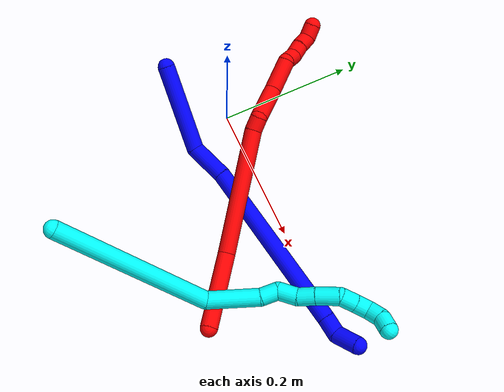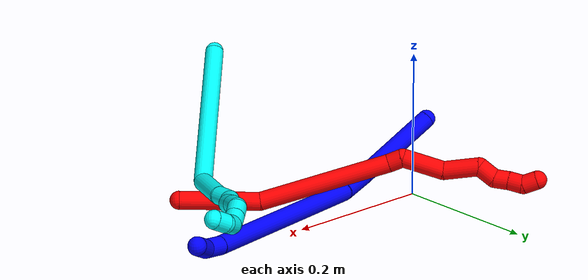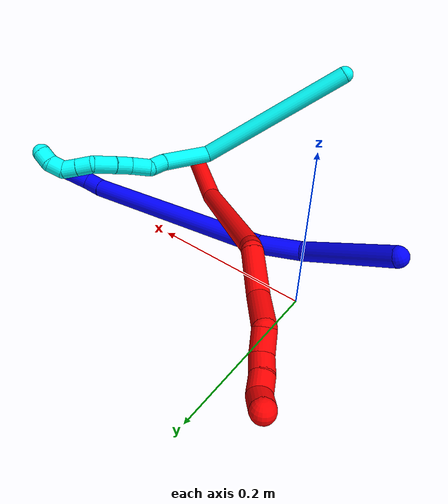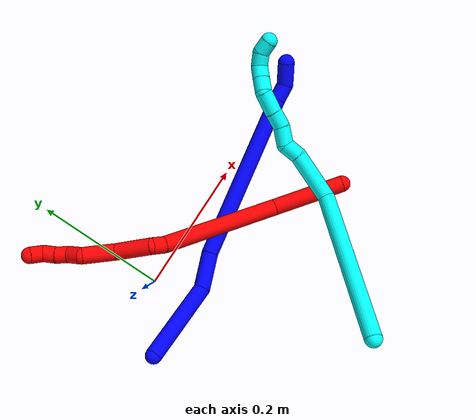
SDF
<sdf version="1.7">
 <world name="default">
  <plugin name="TubeGeneratorPlugin" filename="libtube_generator_plugin.so"/>
  <model name="photoneo_s_sensor">
   <static>1</static>
   <pose>0 0 2 1.57079 1.57079 3.14159</pose>
   <link name="link">
    <inertial><mass>0.1</mass></inertial>
    <sensor name="sensor" type="depth">
     <update_rate>30</update_rate>
     <camera>
      <horizontal_fov>1.22</horizontal_fov>
      <image><width>1920</width><height>1200</height><format>B8G8R8</format></image>
      <clip><near>0.1</near><far>4</far></clip>
      <depth_camera><output>points</output></depth_camera>
     </camera>
     <plugin name="camera_plugin" filename="libgazebo_ros_depth_camera.so">
      <baseline>0.2</baseline>
      <alwaysOn>1</alwaysOn>
      <updateRate>0.0</updateRate>
      <cameraName>camera_ir</cameraName>
      <imageTopicName>/camera/color/image_raw</imageTopicName>
      <cameraInfoTopicName>/camera/color/camera_info</cameraInfoTopicName>
      <depthImageTopicName>/camera/depth/image_raw</depthImageTopicName>
      <depthImageCameraInfoTopicName>/camera/depth/camera_info</depthImageCameraInfoTopicName>
      <pointCloudTopicName>/camera/depth/points</pointCloudTopicName>
      <frameName>fr_optical</frameName>
      <pointCloudCutoff>0.1</pointCloudCutoff>
      <pointCloudCutoffMax>2.0</pointCloudCutoffMax>
      <distortionK1>0</distortionK1>
      <distortionK2>0</distortionK2>
      <distortionK3>0</distortionK3>
      <distortionT1>0</distortionT1>
      <distortionT2>0</distortionT2>
      <CxPrime>0</CxPrime>
      <Cx>0</Cx>
      <Cy>0</Cy>
      <focalLength>0</focalLength>
      <hackBaseline>0</hackBaseline>
     </plugin>
    </sensor>
   </link>
  </model>
  <gravity>0 0 -9.8</gravity>
  <magnetic_field>6e-06 2.3e-05 -4.2e-05</magnetic_field>
  <atmosphere type="adiabatic"/>
  <physics name="default_physics" default="0" type="ode">
   <max_step_size>0.003</max_step_size>
   <real_time_factor>1</real_time_factor>
   <real_time_update_rate>1000</real_time_update_rate>
   <max_contacts>10000</max_contacts>
   <ode>
    <solver>
     <type>quick</type>
     <iters>100</iters>
     <sor>1.3</sor>
     <use_dynamic_moi_rescaling>0</use_dynamic_moi_rescaling>
    </solver>
    <constraints>
     <contact_max_correcting_vel>0</contact_max_correcting_vel>
     <contact_surface_layer>0.001</contact_surface_layer>
     <cfm>0</cfm>
     <erp>0.2</erp>
    </constraints>
   </ode>
  </physics>
  <scene><ambient>0.4 0.4 0.4 1</ambient><background>0.7 0.7 0.7 1</background><shadows>0</shadows></scene>
  <audio><device>default</device></audio>
  <spherical_coordinates>
   <surface_model>EARTH_WGS84</surface_model>
   <latitude_deg>0</latitude_deg>
   <longitude_deg>0</longitude_deg>
   <elevation>0</elevation>
   <heading_deg>0</heading_deg>
  </spherical_coordinates>
  <model name="bin">
   <static>1</static>
   <link name="bottom">
    <collision name="collision-bottom">
     <pose>0 0 -0.01 0 -0 0</pose>
     <geometry><box><size>0.8 0.6 0.02</size></box></geometry>
     <surface>
      <friction><ode><mu>100</mu><mu2>100</mu2></ode></friction>
      <contact><collide_bitmask>65535</collide_bitmask></contact>
     </surface>
    </collision>
   </link>
   <link name="west_wall">
    <collision name="collision-west_wall">
     <pose>-0.41 0 0.1 0 -0 0</pose>
     <geometry><box><size>0.02 0.6 0.2</size></box></geometry>
     <surface>
      <friction><ode><mu>100</mu><mu2>100</mu2></ode></friction>
      <contact><collide_bitmask>65535</collide_bitmask></contact>
     </surface>
    </collision>
   </link>
   <link name="east_wall">
    <collision name="collision-east_wall">
     <pose>0.41 0 0.1 0 -0 0</pose>
     <geometry><box><size>0.02 0.6 0.2</size></box></geometry>
     <surface>
      <friction><ode><mu>100</mu><mu2>100</mu2></ode></friction>
      <contact><collide_bitmask>65535</collide_bitmask></contact>
     </surface>
    </collision>
   </link>
   <link name="south_wall">
    <collision name="collision-south_wall">
     <pose>0 -0.31 0.1 0 -0 0</pose>
     <geometry><box><size>0.8 0.02 0.2</size></box></geometry>
     <surface>
      <friction><ode><mu>100</mu><mu2>100</mu2></ode></friction>
      <contact><collide_bitmask>65535</collide_bitmask></contact>
     </surface>
    </collision>
   </link>
   <link name="north_wall">
    <collision name="collision-north_wall">
     <pose>0 0.31 0.1 0 -0 0</pose>
     <geometry><box><size>0.8 0.02 0.2</size></box></geometry>
     <surface>
      <friction><ode><mu>100</mu><mu2>100</mu2></ode></friction>
      <contact><collide_bitmask>65535</collide_bitmask></contact>
     </surface>
    </collision>
   </link>
  </model>
  <model name="1">
   <static>0</static>
   <link name="1">
    <collision name="collision-cylinder-e_1_1_4">
     <pose>0.063068 0.002849 -0.009328 -2.84515 1.41736 -2.79669</pose>
     <geometry><cylinder><radius>0.0125</radius><length>0.127636</length></cylinder></geometry>
     <surface>
      <friction><ode><mu>1.16</mu><mu2>1.16</mu2><slip1>0</slip1><slip2>0</slip2></ode></friction>
      <contact><ode><kp>1e+06</kp><kd>1</kd><max_vel>0</max_vel><min_depth>0.001</min_depth></ode></contact>
     </surface>
    </collision>
    <visual name="visual-cylinder-e_1_1_4">
     <pose>0.063068 0.002849 -0.009328 -2.84515 1.41736 -2.79669</pose>
     <geometry><cylinder><radius>0.0125</radius><length>0.127636</length></cylinder></geometry>
     <material><ambient>0 0 1 1</ambient></material>
    </visual>
    <collision name="collision-cylinder-e_2_4_5">
     <pose>0.150739 0.016065 -0.010483 -0.903124 1.07832 -0.564811</pose>
     <geometry><cylinder><radius>0.0125</radius><length>0.055841</length></cylinder></geometry>
     <surface>
      <friction><ode><mu>1.16</mu><mu2>1.16</mu2><slip1>0</slip1><slip2>0</slip2></ode></friction>
      <contact><ode><kp>1e+06</kp><kd>1</kd><max_vel>0</max_vel><min_depth>0.001</min_depth></ode></contact>
     </surface>
    </collision>
    <visual name="visual-cylinder-e_2_4_5">
     <pose>0.150739 0.016065 -0.010483 -0.903124 1.07832 -0.564811</pose>
     <geometry><cylinder><radius>0.0125</radius><length>0.055841</length></cylinder></geometry>
     <material><ambient>0 0 1 1</ambient></material>
    </visual>
    <collision name="collision-cylinder-e_3_5_6">
     <pose>0.292622 0.049239 0.043036 -0.466039 1.16234 -0.309289</pose>
     <geometry><cylinder><radius>0.0125</radius><length>0.255586</length></cylinder></geometry>
     <surface>
      <friction><ode><mu>1.16</mu><mu2>1.16</mu2><slip1>0</slip1><slip2>0</slip2></ode></friction>
      <contact><ode><kp>1e+06</kp><kd>1</kd><max_vel>0</max_vel><min_depth>0.001</min_depth></ode></contact>
     </surface>
    </collision>
    <visual name="visual-cylinder-e_3_5_6">
     <pose>0.292622 0.049239 0.043036 -0.466039 1.16234 -0.309289</pose>
     <geometry><cylinder><radius>0.0125</radius><length>0.255586</length></cylinder></geometry>
     <material><ambient>0 0 1 1</ambient></material>
    </visual>
    <collision name="collision-cylinder-e_4_6_7">
     <pose>0.421591 0.073165 0.094202 -0.189625 1.10145 -0.116667</pose>
     <geometry><cylinder><radius>0.0125</radius><length>0.026211</length></cylinder></geometry>
     <surface>
      <friction><ode><mu>1.16</mu><mu2>1.16</mu2><slip1>0</slip1><slip2>0</slip2></ode></friction>
      <contact><ode><kp>1e+06</kp><kd>1</kd><max_vel>0</max_vel><min_depth>0.001</min_depth></ode></contact>
     </surface>
    </collision>
    <visual name="visual-cylinder-e_4_6_7">
     <pose>0.421591 0.073165 0.094202 -0.189625 1.10145 -0.116667</pose>
     <geometry><cylinder><radius>0.0125</radius><length>0.026211</length></cylinder></geometry>
     <material><ambient>0 0 1 1</ambient></material>
    </visual>
    <collision name="collision-cylinder-e_5_7_2">
     <pose>0.442635 0.081223 0.112899 -0.494432 0.569028 -0.147348</pose>
     <geometry><cylinder><radius>0.0125</radius><length>0.034726</length></cylinder></geometry>
     <surface>
      <friction><ode><mu>1.16</mu><mu2>1.16</mu2><slip1>0</slip1><slip2>0</slip2></ode></friction>
      <contact><ode><kp>1e+06</kp><kd>1</kd><max_vel>0</max_vel><min_depth>0.001</min_depth></ode></contact>
     </surface>
    </collision>
    <visual name="visual-cylinder-e_5_7_2">
     <pose>0.442635 0.081223 0.112899 -0.494432 0.569028 -0.147348</pose>
     <geometry><cylinder><radius>0.0125</radius><length>0.034726</length></cylinder></geometry>
     <material><ambient>0 0 1 1</ambient></material>
    </visual>
    <collision name="collision-sphere-2">
     <pose>0.45199 0.088164 0.125774 0 -0 0</pose>
     <geometry><sphere><radius>0.0125</radius></sphere></geometry>
     <surface>
      <friction><ode><mu>1.16</mu><mu2>1.16</mu2><slip1>0</slip1><slip2>0</slip2></ode></friction>
      <contact><ode><kp>1e+06</kp><kd>1</kd><max_vel>0</max_vel><min_depth>0.001</min_depth></ode></contact>
     </surface>
    </collision>
    <visual name="visual-sphere-2">
     <pose>0.45199 0.088164 0.125774 0 -0 0</pose>
     <geometry><sphere><radius>0.0125</radius></sphere></geometry>
     <material><ambient>0 0 1 1</ambient></material>
    </visual>
    <collision name="collision-sphere-7">
     <pose>0.433279 0.074282 0.100024 0 -0 0</pose>
     <geometry><sphere><radius>0.0125</radius></sphere></geometry>
     <surface>
      <friction><ode><mu>1.16</mu><mu2>1.16</mu2><slip1>0</slip1><slip2>0</slip2></ode></friction>
      <contact><ode><kp>1e+06</kp><kd>1</kd><max_vel>0</max_vel><min_depth>0.001</min_depth></ode></contact>
     </surface>
    </collision>
    <visual name="visual-sphere-7">
     <pose>0.433279 0.074282 0.100024 0 -0 0</pose>
     <geometry><sphere><radius>0.0125</radius></sphere></geometry>
     <material><ambient>0 0 1 1</ambient></material>
    </visual>
    <collision name="collision-sphere-6">
     <pose>0.409902 0.072047 0.088381 0 -0 0</pose>
     <geometry><sphere><radius>0.0125</radius></sphere></geometry>
     <surface>
      <friction><ode><mu>1.16</mu><mu2>1.16</mu2><slip1>0</slip1><slip2>0</slip2></ode></friction>
      <contact><ode><kp>1e+06</kp><kd>1</kd><max_vel>0</max_vel><min_depth>0.001</min_depth></ode></contact>
     </surface>
    </collision>
    <visual name="visual-sphere-6">
     <pose>0.409902 0.072047 0.088381 0 -0 0</pose>
     <geometry><sphere><radius>0.0125</radius></sphere></geometry>
     <material><ambient>0 0 1 1</ambient></material>
    </visual>
    <collision name="collision-sphere-5">
     <pose>0.175341 0.026431 -0.002309 0 -0 0</pose>
     <geometry><sphere><radius>0.0125</radius></sphere></geometry>
     <surface>
      <friction><ode><mu>1.16</mu><mu2>1.16</mu2><slip1>0</slip1><slip2>0</slip2></ode></friction>
      <contact><ode><kp>1e+06</kp><kd>1</kd><max_vel>0</max_vel><min_depth>0.001</min_depth></ode></contact>
     </surface>
    </collision>
    <visual name="visual-sphere-5">
     <pose>0.175341 0.026431 -0.002309 0 -0 0</pose>
     <geometry><sphere><radius>0.0125</radius></sphere></geometry>
     <material><ambient>0 0 1 1</ambient></material>
    </visual>
    <collision name="collision-sphere-1">
     <geometry><sphere><radius>0.0125</radius></sphere></geometry>
     <surface>
      <friction><ode><mu>1.16</mu><mu2>1.16</mu2><slip1>0</slip1><slip2>0</slip2></ode></friction>
      <contact><ode><kp>1e+06</kp><kd>1</kd><max_vel>0</max_vel><min_depth>0.001</min_depth></ode></contact>
     </surface>
    </collision>
    <visual name="visual-sphere-1">
     <geometry><sphere><radius>0.0125</radius></sphere></geometry>
     <material><ambient>0 0 1 1</ambient></material>
    </visual>
    <collision name="collision-sphere-4">
     <pose>0.126136 0.005698 -0.018656 0 -0 0</pose>
     <geometry><sphere><radius>0.0125</radius></sphere></geometry>
     <surface>
      <friction><ode><mu>1.16</mu><mu2>1.16</mu2><slip1>0</slip1><slip2>0</slip2></ode></friction>
      <contact><ode><kp>1e+06</kp><kd>1</kd><max_vel>0</max_vel><min_depth>0.001</min_depth></ode></contact>
     </surface>
    </collision>
    <visual name="visual-sphere-4">
     <pose>0.126136 0.005698 -0.018656 0 -0 0</pose>
     <geometry><sphere><radius>0.0125</radius></sphere></geometry>
     <material><ambient>0 0 1 1</ambient></material>
    </visual>
    <inertial>
     <pose>0.235357 0.037168 0.031226 0 -0 0</pose>
     <mass>0.5</mass>
     <inertia>
      <ixx>0.000368</ixx>
      <ixy>0</ixy>
      <ixz>0</ixz>
      <iyy>0.001391</iyy>
      <iyz>0</iyz>
      <izz>-0.001738</izz>
     </inertia>
    </inertial>
   </link>
   <pose>-0.081883 -0.059872 0.074145 -0.183052 0.324813 -0.073746</pose>
  </model>
  <model name="2">
   <static>0</static>
   <link name="2">
    <collision name="collision-cylinder-e_1_1_4">
     <pose>-0.034932 0.040209 -0.011008 -1.83803 -0.697437 0.889338</pose>
     <geometry><cylinder><radius>0.0125</radius><length>0.108778</length></cylinder></geometry>
     <surface>
      <friction><ode><mu>1.16</mu><mu2>1.16</mu2><slip1>0</slip1><slip2>0</slip2></ode></friction>
      <contact><ode><kp>1e+06</kp><kd>1</kd><max_vel>0</max_vel><min_depth>0.001</min_depth></ode></contact>
     </surface>
    </collision>
    <visual name="visual-cylinder-e_1_1_4">
     <pose>-0.034932 0.040209 -0.011008 -1.83803 -0.697437 0.889338</pose>
     <geometry><cylinder><radius>0.0125</radius><length>0.108778</length></cylinder></geometry>
     <material><ambient>1 0 0 1</ambient></material>
    </visual>
    <collision name="collision-cylinder-e_2_4_5">
     <pose>-0.127479 0.148754 -0.011271 -1.41481 -0.694468 0.600177</pose>
     <geometry><cylinder><radius>0.0125</radius><length>0.180054</length></cylinder></geometry>
     <surface>
      <friction><ode><mu>1.16</mu><mu2>1.16</mu2><slip1>0</slip1><slip2>0</slip2></ode></friction>
      <contact><ode><kp>1e+06</kp><kd>1</kd><max_vel>0</max_vel><min_depth>0.001</min_depth></ode></contact>
     </surface>
    </collision>
    <visual name="visual-cylinder-e_2_4_5">
     <pose>-0.127479 0.148754 -0.011271 -1.41481 -0.694468 0.600177</pose>
     <geometry><cylinder><radius>0.0125</radius><length>0.180054</length></cylinder></geometry>
     <material><ambient>1 0 0 1</ambient></material>
    </visual>
    <collision name="collision-cylinder-e_3_5_6">
     <pose>-0.189625 0.225779 0.002099 -1.27757 -0.463071 0.34667</pose>
     <geometry><cylinder><radius>0.0125</radius><length>0.020289</length></cylinder></geometry>
     <surface>
      <friction><ode><mu>1.16</mu><mu2>1.16</mu2><slip1>0</slip1><slip2>0</slip2></ode></friction>
      <contact><ode><kp>1e+06</kp><kd>1</kd><max_vel>0</max_vel><min_depth>0.001</min_depth></ode></contact>
     </surface>
    </collision>
    <visual name="visual-cylinder-e_3_5_6">
     <pose>-0.189625 0.225779 0.002099 -1.27757 -0.463071 0.34667</pose>
     <geometry><cylinder><radius>0.0125</radius><length>0.020289</length></cylinder></geometry>
     <material><ambient>1 0 0 1</ambient></material>
    </visual>
    <collision name="collision-cylinder-e_4_6_7">
     <pose>-0.207286 0.256367 -0.007714 -2.08728 -0.480561 0.796804</pose>
     <geometry><cylinder><radius>0.0125</radius><length>0.056801</length></cylinder></geometry>
     <surface>
      <friction><ode><mu>1.16</mu><mu2>1.16</mu2><slip1>0</slip1><slip2>0</slip2></ode></friction>
      <contact><ode><kp>1e+06</kp><kd>1</kd><max_vel>0</max_vel><min_depth>0.001</min_depth></ode></contact>
     </surface>
    </collision>
    <visual name="visual-cylinder-e_4_6_7">
     <pose>-0.207286 0.256367 -0.007714 -2.08728 -0.480561 0.796804</pose>
     <geometry><cylinder><radius>0.0125</radius><length>0.056801</length></cylinder></geometry>
     <material><ambient>1 0 0 1</ambient></material>
    </visual>
    <collision name="collision-cylinder-e_5_7_8">
     <pose>-0.231904 0.299765 -0.020185 -1.57244 -0.490808 0.491582</pose>
     <geometry><cylinder><radius>0.0125</radius><length>0.048755</length></cylinder></geometry>
     <surface>
      <friction><ode><mu>1.16</mu><mu2>1.16</mu2><slip1>0</slip1><slip2>0</slip2></ode></friction>
      <contact><ode><kp>1e+06</kp><kd>1</kd><max_vel>0</max_vel><min_depth>0.001</min_depth></ode></contact>
     </surface>
    </collision>
    <visual name="visual-cylinder-e_5_7_8">
     <pose>-0.231904 0.299765 -0.020185 -1.57244 -0.490808 0.491582</pose>
     <geometry><cylinder><radius>0.0125</radius><length>0.048755</length></cylinder></geometry>
     <material><ambient>1 0 0 1</ambient></material>
    </visual>
    <collision name="collision-cylinder-e_6_8_9">
     <pose>-0.245976 0.330001 -0.028961 -2.35643 -0.205964 0.489176</pose>
     <geometry><cylinder><radius>0.0125</radius><length>0.02525</length></cylinder></geometry>
     <surface>
      <friction><ode><mu>1.16</mu><mu2>1.16</mu2><slip1>0</slip1><slip2>0</slip2></ode></friction>
      <contact><ode><kp>1e+06</kp><kd>1</kd><max_vel>0</max_vel><min_depth>0.001</min_depth></ode></contact>
     </surface>
    </collision>
    <visual name="visual-cylinder-e_6_8_9">
     <pose>-0.245976 0.330001 -0.028961 -2.35643 -0.205964 0.489176</pose>
     <geometry><cylinder><radius>0.0125</radius><length>0.02525</length></cylinder></geometry>
     <material><ambient>1 0 0 1</ambient></material>
    </visual>
    <collision name="collision-cylinder-e_7_9_10">
     <pose>-0.252432 0.347654 -0.040124 -1.83605 -0.396999 0.514506</pose>
     <geometry><cylinder><radius>0.0125</radius><length>0.020037</length></cylinder></geometry>
     <surface>
      <friction><ode><mu>1.16</mu><mu2>1.16</mu2><slip1>0</slip1><slip2>0</slip2></ode></friction>
      <contact><ode><kp>1e+06</kp><kd>1</kd><max_vel>0</max_vel><min_depth>0.001</min_depth></ode></contact>
     </surface>
    </collision>
    <visual name="visual-cylinder-e_7_9_10">
     <pose>-0.252432 0.347654 -0.040124 -1.83605 -0.396999 0.514506</pose>
     <geometry><cylinder><radius>0.0125</radius><length>0.020037</length></cylinder></geometry>
     <material><ambient>1 0 0 1</ambient></material>
    </visual>
    <collision name="collision-cylinder-e_8_10_11">
     <pose>-0.258729 0.365787 -0.045621 -1.89279 -0.244445 0.337688</pose>
     <geometry><cylinder><radius>0.0125</radius><length>0.020028</length></cylinder></geometry>
     <surface>
      <friction><ode><mu>1.16</mu><mu2>1.16</mu2><slip1>0</slip1><slip2>0</slip2></ode></friction>
      <contact><ode><kp>1e+06</kp><kd>1</kd><max_vel>0</max_vel><min_depth>0.001</min_depth></ode></contact>
     </surface>
    </collision>
    <visual name="visual-cylinder-e_8_10_11">
     <pose>-0.258729 0.365787 -0.045621 -1.89279 -0.244445 0.337688</pose>
     <geometry><cylinder><radius>0.0125</radius><length>0.020028</length></cylinder></geometry>
     <material><ambient>1 0 0 1</ambient></material>
    </visual>
    <collision name="collision-cylinder-e_9_11_2">
     <pose>-0.265969 0.383523 -0.046617 -1.33146 -0.502248 0.397613</pose>
     <geometry><cylinder><radius>0.0125</radius><length>0.020008</length></cylinder></geometry>
     <surface>
      <friction><ode><mu>1.16</mu><mu2>1.16</mu2><slip1>0</slip1><slip2>0</slip2></ode></friction>
      <contact><ode><kp>1e+06</kp><kd>1</kd><max_vel>0</max_vel><min_depth>0.001</min_depth></ode></contact>
     </surface>
    </collision>
    <visual name="visual-cylinder-e_9_11_2">
     <pose>-0.265969 0.383523 -0.046617 -1.33146 -0.502248 0.397613</pose>
     <geometry><cylinder><radius>0.0125</radius><length>0.020008</length></cylinder></geometry>
     <material><ambient>1 0 0 1</ambient></material>
    </visual>
    <collision name="collision-sphere-2">
     <pose>-0.270785 0.392042 -0.044538 0 -0 0</pose>
     <geometry><sphere><radius>0.0125</radius></sphere></geometry>
     <surface>
      <friction><ode><mu>1.16</mu><mu2>1.16</mu2><slip1>0</slip1><slip2>0</slip2></ode></friction>
      <contact><ode><kp>1e+06</kp><kd>1</kd><max_vel>0</max_vel><min_depth>0.001</min_depth></ode></contact>
     </surface>
    </collision>
    <visual name="visual-sphere-2">
     <pose>-0.270785 0.392042 -0.044538 0 -0 0</pose>
     <geometry><sphere><radius>0.0125</radius></sphere></geometry>
     <material><ambient>1 0 0 1</ambient></material>
    </visual>
    <collision name="collision-sphere-11">
     <pose>-0.261153 0.375004 -0.048696 0 -0 0</pose>
     <geometry><sphere><radius>0.0125</radius></sphere></geometry>
     <surface>
      <friction><ode><mu>1.16</mu><mu2>1.16</mu2><slip1>0</slip1><slip2>0</slip2></ode></friction>
      <contact><ode><kp>1e+06</kp><kd>1</kd><max_vel>0</max_vel><min_depth>0.001</min_depth></ode></contact>
     </surface>
    </collision>
    <visual name="visual-sphere-11">
     <pose>-0.261153 0.375004 -0.048696 0 -0 0</pose>
     <geometry><sphere><radius>0.0125</radius></sphere></geometry>
     <material><ambient>1 0 0 1</ambient></material>
    </visual>
    <collision name="collision-sphere-10">
     <pose>-0.256306 0.356571 -0.042546 0 -0 0</pose>
     <geometry><sphere><radius>0.0125</radius></sphere></geometry>
     <surface>
      <friction><ode><mu>1.16</mu><mu2>1.16</mu2><slip1>0</slip1><slip2>0</slip2></ode></friction>
      <contact><ode><kp>1e+06</kp><kd>1</kd><max_vel>0</max_vel><min_depth>0.001</min_depth></ode></contact>
     </surface>
    </collision>
    <visual name="visual-sphere-10">
     <pose>-0.256306 0.356571 -0.042546 0 -0 0</pose>
     <geometry><sphere><radius>0.0125</radius></sphere></geometry>
     <material><ambient>1 0 0 1</ambient></material>
    </visual>
    <collision name="collision-sphere-9">
     <pose>-0.248558 0.338738 -0.037702 0 -0 0</pose>
     <geometry><sphere><radius>0.0125</radius></sphere></geometry>
     <surface>
      <friction><ode><mu>1.16</mu><mu2>1.16</mu2><slip1>0</slip1><slip2>0</slip2></ode></friction>
      <contact><ode><kp>1e+06</kp><kd>1</kd><max_vel>0</max_vel><min_depth>0.001</min_depth></ode></contact>
     </surface>
    </collision>
    <visual name="visual-sphere-9">
     <pose>-0.248558 0.338738 -0.037702 0 -0 0</pose>
     <geometry><sphere><radius>0.0125</radius></sphere></geometry>
     <material><ambient>1 0 0 1</ambient></material>
    </visual>
    <collision name="collision-sphere-4">
     <pose>-0.069864 0.080418 -0.022017 0 -0 0</pose>
     <geometry><sphere><radius>0.0125</radius></sphere></geometry>
     <surface>
      <friction><ode><mu>1.16</mu><mu2>1.16</mu2><slip1>0</slip1><slip2>0</slip2></ode></friction>
      <contact><ode><kp>1e+06</kp><kd>1</kd><max_vel>0</max_vel><min_depth>0.001</min_depth></ode></contact>
     </surface>
    </collision>
    <visual name="visual-sphere-4">
     <pose>-0.069864 0.080418 -0.022017 0 -0 0</pose>
     <geometry><sphere><radius>0.0125</radius></sphere></geometry>
     <material><ambient>1 0 0 1</ambient></material>
    </visual>
    <collision name="collision-sphere-1">
     <geometry><sphere><radius>0.0125</radius></sphere></geometry>
     <surface>
      <friction><ode><mu>1.16</mu><mu2>1.16</mu2><slip1>0</slip1><slip2>0</slip2></ode></friction>
      <contact><ode><kp>1e+06</kp><kd>1</kd><max_vel>0</max_vel><min_depth>0.001</min_depth></ode></contact>
     </surface>
    </collision>
    <visual name="visual-sphere-1">
     <geometry><sphere><radius>0.0125</radius></sphere></geometry>
     <material><ambient>1 0 0 1</ambient></material>
    </visual>
    <collision name="collision-sphere-8">
     <pose>-0.243394 0.321265 -0.02022 0 -0 0</pose>
     <geometry><sphere><radius>0.0125</radius></sphere></geometry>
     <surface>
      <friction><ode><mu>1.16</mu><mu2>1.16</mu2><slip1>0</slip1><slip2>0</slip2></ode></friction>
      <contact><ode><kp>1e+06</kp><kd>1</kd><max_vel>0</max_vel><min_depth>0.001</min_depth></ode></contact>
     </surface>
    </collision>
    <visual name="visual-sphere-8">
     <pose>-0.243394 0.321265 -0.02022 0 -0 0</pose>
     <geometry><sphere><radius>0.0125</radius></sphere></geometry>
     <material><ambient>1 0 0 1</ambient></material>
    </visual>
    <collision name="collision-sphere-5">
     <pose>-0.185094 0.217091 -0.000524 0 -0 0</pose>
     <geometry><sphere><radius>0.0125</radius></sphere></geometry>
     <surface>
      <friction><ode><mu>1.16</mu><mu2>1.16</mu2><slip1>0</slip1><slip2>0</slip2></ode></friction>
      <contact><ode><kp>1e+06</kp><kd>1</kd><max_vel>0</max_vel><min_depth>0.001</min_depth></ode></contact>
     </surface>
    </collision>
    <visual name="visual-sphere-5">
     <pose>-0.185094 0.217091 -0.000524 0 -0 0</pose>
     <geometry><sphere><radius>0.0125</radius></sphere></geometry>
     <material><ambient>1 0 0 1</ambient></material>
    </visual>
    <collision name="collision-sphere-6">
     <pose>-0.194157 0.234468 0.004723 0 -0 0</pose>
     <geometry><sphere><radius>0.0125</radius></sphere></geometry>
     <surface>
      <friction><ode><mu>1.16</mu><mu2>1.16</mu2><slip1>0</slip1><slip2>0</slip2></ode></friction>
      <contact><ode><kp>1e+06</kp><kd>1</kd><max_vel>0</max_vel><min_depth>0.001</min_depth></ode></contact>
     </surface>
    </collision>
    <visual name="visual-sphere-6">
     <pose>-0.194157 0.234468 0.004723 0 -0 0</pose>
     <geometry><sphere><radius>0.0125</radius></sphere></geometry>
     <material><ambient>1 0 0 1</ambient></material>
    </visual>
    <collision name="collision-sphere-7">
     <pose>-0.220415 0.278266 -0.02015 0 -0 0</pose>
     <geometry><sphere><radius>0.0125</radius></sphere></geometry>
     <surface>
      <friction><ode><mu>1.16</mu><mu2>1.16</mu2><slip1>0</slip1><slip2>0</slip2></ode></friction>
      <contact><ode><kp>1e+06</kp><kd>1</kd><max_vel>0</max_vel><min_depth>0.001</min_depth></ode></contact>
     </surface>
    </collision>
    <visual name="visual-sphere-7">
     <pose>-0.220415 0.278266 -0.02015 0 -0 0</pose>
     <geometry><sphere><radius>0.0125</radius></sphere></geometry>
     <material><ambient>1 0 0 1</ambient></material>
    </visual>
    <inertial>
     <pose>-0.150906 0.190427 -0.015976 0 -0 0</pose>
     <mass>0.5</mass>
     <inertia>
      <ixx>0.000672</ixx>
      <ixy>0</ixy>
      <ixz>0</ixz>
      <iyy>0.000606</iyy>
      <iyz>0</iyz>
      <izz>-8.7e-05</izz>
     </inertia>
    </inertial>
   </link>
   <pose>0.281328 -0.156493 0.017843 0.156043 0.064979 0.211762</pose>
  </model>
  <model name="3">
   <static>0</static>
   <link name="3">
    <collision name="collision-cylinder-e_1_1_4">
     <pose>0.007472 0.00104 0.115876 -0.008978 0.064392 -0.000289</pose>
     <geometry><cylinder><radius>0.0125</radius><length>0.232243</length></cylinder></geometry>
     <surface>
      <friction><ode><mu>1.16</mu><mu2>1.16</mu2><slip1>0</slip1><slip2>0</slip2></ode></friction>
      <contact><ode><kp>1e+06</kp><kd>1</kd><max_vel>0</max_vel><min_depth>0.001</min_depth></ode></contact>
     </surface>
    </collision>
    <visual name="visual-cylinder-e_1_1_4">
     <pose>0.007472 0.00104 0.115876 -0.008978 0.064392 -0.000289</pose>
     <geometry><cylinder><radius>0.0125</radius><length>0.232243</length></cylinder></geometry>
     <material><ambient>0.003922 1 0.996078 1</ambient></material>
    </visual>
    <collision name="collision-cylinder-e_2_4_5">
     <pose>0.033492 0.020572 0.258281 -0.608739 0.520753 -0.166995</pose>
     <geometry><cylinder><radius>0.0125</radius><length>0.074558</length></cylinder></geometry>
     <surface>
      <friction><ode><mu>1.16</mu><mu2>1.16</mu2><slip1>0</slip1><slip2>0</slip2></ode></friction>
      <contact><ode><kp>1e+06</kp><kd>1</kd><max_vel>0</max_vel><min_depth>0.001</min_depth></ode></contact>
     </surface>
    </collision>
    <visual name="visual-cylinder-e_2_4_5">
     <pose>0.033492 0.020572 0.258281 -0.608739 0.520753 -0.166995</pose>
     <geometry><cylinder><radius>0.0125</radius><length>0.074558</length></cylinder></geometry>
     <material><ambient>0.003922 1 0.996078 1</ambient></material>
    </visual>
    <collision name="collision-cylinder-e_3_5_6">
     <pose>0.061248 0.043642 0.292101 -0.560636 0.819006 -0.248631</pose>
     <geometry><cylinder><radius>0.0125</radius><length>0.025213</length></cylinder></geometry>
     <surface>
      <friction><ode><mu>1.16</mu><mu2>1.16</mu2><slip1>0</slip1><slip2>0</slip2></ode></friction>
      <contact><ode><kp>1e+06</kp><kd>1</kd><max_vel>0</max_vel><min_depth>0.001</min_depth></ode></contact>
     </surface>
    </collision>
    <visual name="visual-cylinder-e_3_5_6">
     <pose>0.061248 0.043642 0.292101 -0.560636 0.819006 -0.248631</pose>
     <geometry><cylinder><radius>0.0125</radius><length>0.025213</length></cylinder></geometry>
     <material><ambient>0.003922 1 0.996078 1</ambient></material>
    </visual>
    <collision name="collision-cylinder-e_4_6_7">
     <pose>0.072498 0.057613 0.309727 -0.737699 0.145174 -0.056199</pose>
     <geometry><cylinder><radius>0.0125</radius><length>0.028228</length></cylinder></geometry>
     <surface>
      <friction><ode><mu>1.16</mu><mu2>1.16</mu2><slip1>0</slip1><slip2>0</slip2></ode></friction>
      <contact><ode><kp>1e+06</kp><kd>1</kd><max_vel>0</max_vel><min_depth>0.001</min_depth></ode></contact>
     </surface>
    </collision>
    <visual name="visual-cylinder-e_4_6_7">
     <pose>0.072498 0.057613 0.309727 -0.737699 0.145174 -0.056199</pose>
     <geometry><cylinder><radius>0.0125</radius><length>0.028228</length></cylinder></geometry>
     <material><ambient>0.003922 1 0.996078 1</ambient></material>
    </visual>
    <collision name="collision-cylinder-e_5_7_8">
     <pose>0.080155 0.075216 0.327197 -0.855318 0.47659 -0.220534</pose>
     <geometry><cylinder><radius>0.0125</radius><length>0.024481</length></cylinder></geometry>
     <surface>
      <friction><ode><mu>1.16</mu><mu2>1.16</mu2><slip1>0</slip1><slip2>0</slip2></ode></friction>
      <contact><ode><kp>1e+06</kp><kd>1</kd><max_vel>0</max_vel><min_depth>0.001</min_depth></ode></contact>
     </surface>
    </collision>
    <visual name="visual-cylinder-e_5_7_8">
     <pose>0.080155 0.075216 0.327197 -0.855318 0.47659 -0.220534</pose>
     <geometry><cylinder><radius>0.0125</radius><length>0.024481</length></cylinder></geometry>
     <material><ambient>0.003922 1 0.996078 1</ambient></material>
    </visual>
    <collision name="collision-cylinder-e_6_8_9">
     <pose>0.092376 0.094053 0.344701 -0.797721 0.418535 -0.178537</pose>
     <geometry><cylinder><radius>0.0125</radius><length>0.032502</length></cylinder></geometry>
     <surface>
      <friction><ode><mu>1.16</mu><mu2>1.16</mu2><slip1>0</slip1><slip2>0</slip2></ode></friction>
      <contact><ode><kp>1e+06</kp><kd>1</kd><max_vel>0</max_vel><min_depth>0.001</min_depth></ode></contact>
     </surface>
    </collision>
    <visual name="visual-cylinder-e_6_8_9">
     <pose>0.092376 0.094053 0.344701 -0.797721 0.418535 -0.178537</pose>
     <geometry><cylinder><radius>0.0125</radius><length>0.032502</length></cylinder></geometry>
     <material><ambient>0.003922 1 0.996078 1</ambient></material>
    </visual>
    <collision name="collision-cylinder-e_7_9_10">
     <pose>0.099539 0.108559 0.365149 -0.3673 0.051628 -0.009592</pose>
     <geometry><cylinder><radius>0.0125</radius><length>0.021627</length></cylinder></geometry>
     <surface>
      <friction><ode><mu>1.16</mu><mu2>1.16</mu2><slip1>0</slip1><slip2>0</slip2></ode></friction>
      <contact><ode><kp>1e+06</kp><kd>1</kd><max_vel>0</max_vel><min_depth>0.001</min_depth></ode></contact>
     </surface>
    </collision>
    <visual name="visual-cylinder-e_7_9_10">
     <pose>0.099539 0.108559 0.365149 -0.3673 0.051628 -0.009592</pose>
     <geometry><cylinder><radius>0.0125</radius><length>0.021627</length></cylinder></geometry>
     <material><ambient>0.003922 1 0.996078 1</ambient></material>
    </visual>
    <collision name="collision-cylinder-e_8_10_11">
     <pose>0.100348 0.116148 0.384657 -0.374977 0.024777 -0.004701</pose>
     <geometry><cylinder><radius>0.0125</radius><length>0.020274</length></cylinder></geometry>
     <surface>
      <friction><ode><mu>1.16</mu><mu2>1.16</mu2><slip1>0</slip1><slip2>0</slip2></ode></friction>
      <contact><ode><kp>1e+06</kp><kd>1</kd><max_vel>0</max_vel><min_depth>0.001</min_depth></ode></contact>
     </surface>
    </collision>
    <visual name="visual-cylinder-e_8_10_11">
     <pose>0.100348 0.116148 0.384657 -0.374977 0.024777 -0.004701</pose>
     <geometry><cylinder><radius>0.0125</radius><length>0.020274</length></cylinder></geometry>
     <material><ambient>0.003922 1 0.996078 1</ambient></material>
    </visual>
    <collision name="collision-cylinder-e_9_11_12">
     <pose>0.099146 0.128495 0.399525 -1.00882 -0.141412 0.078155</pose>
     <geometry><cylinder><radius>0.0125</radius><length>0.020616</length></cylinder></geometry>
     <surface>
      <friction><ode><mu>1.16</mu><mu2>1.16</mu2><slip1>0</slip1><slip2>0</slip2></ode></friction>
      <contact><ode><kp>1e+06</kp><kd>1</kd><max_vel>0</max_vel><min_depth>0.001</min_depth></ode></contact>
     </surface>
    </collision>
    <visual name="visual-cylinder-e_9_11_12">
     <pose>0.099146 0.128495 0.399525 -1.00882 -0.141412 0.078155</pose>
     <geometry><cylinder><radius>0.0125</radius><length>0.020616</length></cylinder></geometry>
     <material><ambient>0.003922 1 0.996078 1</ambient></material>
    </visual>
    <collision name="collision-cylinder-e_10_12_2">
     <pose>0.09218 0.145168 0.407723 -1.24003 -0.575536 0.416496</pose>
     <geometry><cylinder><radius>0.0125</radius><length>0.020258</length></cylinder></geometry>
     <surface>
      <friction><ode><mu>1.16</mu><mu2>1.16</mu2><slip1>0</slip1><slip2>0</slip2></ode></friction>
      <contact><ode><kp>1e+06</kp><kd>1</kd><max_vel>0</max_vel><min_depth>0.001</min_depth></ode></contact>
     </surface>
    </collision>
    <visual name="visual-cylinder-e_10_12_2">
     <pose>0.09218 0.145168 0.407723 -1.24003 -0.575536 0.416496</pose>
     <geometry><cylinder><radius>0.0125</radius><length>0.020258</length></cylinder></geometry>
     <material><ambient>0.003922 1 0.996078 1</ambient></material>
    </visual>
    <collision name="collision-sphere-2">
     <pose>0.086667 0.153204 0.410482 0 -0 0</pose>
     <geometry><sphere><radius>0.0125</radius></sphere></geometry>
     <surface>
      <friction><ode><mu>1.16</mu><mu2>1.16</mu2><slip1>0</slip1><slip2>0</slip2></ode></friction>
      <contact><ode><kp>1e+06</kp><kd>1</kd><max_vel>0</max_vel><min_depth>0.001</min_depth></ode></contact>
     </surface>
    </collision>
    <visual name="visual-sphere-2">
     <pose>0.086667 0.153204 0.410482 0 -0 0</pose>
     <geometry><sphere><radius>0.0125</radius></sphere></geometry>
     <material><ambient>0.003922 1 0.996078 1</ambient></material>
    </visual>
    <collision name="collision-sphere-12">
     <pose>0.097693 0.137131 0.404963 0 -0 0</pose>
     <geometry><sphere><radius>0.0125</radius></sphere></geometry>
     <surface>
      <friction><ode><mu>1.16</mu><mu2>1.16</mu2><slip1>0</slip1><slip2>0</slip2></ode></friction>
      <contact><ode><kp>1e+06</kp><kd>1</kd><max_vel>0</max_vel><min_depth>0.001</min_depth></ode></contact>
     </surface>
    </collision>
    <visual name="visual-sphere-12">
     <pose>0.097693 0.137131 0.404963 0 -0 0</pose>
     <geometry><sphere><radius>0.0125</radius></sphere></geometry>
     <material><ambient>0.003922 1 0.996078 1</ambient></material>
    </visual>
    <collision name="collision-sphere-11">
     <pose>0.100599 0.11986 0.394087 0 -0 0</pose>
     <geometry><sphere><radius>0.0125</radius></sphere></geometry>
     <surface>
      <friction><ode><mu>1.16</mu><mu2>1.16</mu2><slip1>0</slip1><slip2>0</slip2></ode></friction>
      <contact><ode><kp>1e+06</kp><kd>1</kd><max_vel>0</max_vel><min_depth>0.001</min_depth></ode></contact>
     </surface>
    </collision>
    <visual name="visual-sphere-11">
     <pose>0.100599 0.11986 0.394087 0 -0 0</pose>
     <geometry><sphere><radius>0.0125</radius></sphere></geometry>
     <material><ambient>0.003922 1 0.996078 1</ambient></material>
    </visual>
    <collision name="collision-sphere-10">
     <pose>0.100097 0.112437 0.375227 0 -0 0</pose>
     <geometry><sphere><radius>0.0125</radius></sphere></geometry>
     <surface>
      <friction><ode><mu>1.16</mu><mu2>1.16</mu2><slip1>0</slip1><slip2>0</slip2></ode></friction>
      <contact><ode><kp>1e+06</kp><kd>1</kd><max_vel>0</max_vel><min_depth>0.001</min_depth></ode></contact>
     </surface>
    </collision>
    <visual name="visual-sphere-10">
     <pose>0.100097 0.112437 0.375227 0 -0 0</pose>
     <geometry><sphere><radius>0.0125</radius></sphere></geometry>
     <material><ambient>0.003922 1 0.996078 1</ambient></material>
    </visual>
    <collision name="collision-sphere-9">
     <pose>0.098981 0.104681 0.35507 0 -0 0</pose>
     <geometry><sphere><radius>0.0125</radius></sphere></geometry>
     <surface>
      <friction><ode><mu>1.16</mu><mu2>1.16</mu2><slip1>0</slip1><slip2>0</slip2></ode></friction>
      <contact><ode><kp>1e+06</kp><kd>1</kd><max_vel>0</max_vel><min_depth>0.001</min_depth></ode></contact>
     </surface>
    </collision>
    <visual name="visual-sphere-9">
     <pose>0.098981 0.104681 0.35507 0 -0 0</pose>
     <geometry><sphere><radius>0.0125</radius></sphere></geometry>
     <material><ambient>0.003922 1 0.996078 1</ambient></material>
    </visual>
    <collision name="collision-sphere-4">
     <pose>0.014944 0.002081 0.231752 0 -0 0</pose>
     <geometry><sphere><radius>0.0125</radius></sphere></geometry>
     <surface>
      <friction><ode><mu>1.16</mu><mu2>1.16</mu2><slip1>0</slip1><slip2>0</slip2></ode></friction>
      <contact><ode><kp>1e+06</kp><kd>1</kd><max_vel>0</max_vel><min_depth>0.001</min_depth></ode></contact>
     </surface>
    </collision>
    <visual name="visual-sphere-4">
     <pose>0.014944 0.002081 0.231752 0 -0 0</pose>
     <geometry><sphere><radius>0.0125</radius></sphere></geometry>
     <material><ambient>0.003922 1 0.996078 1</ambient></material>
    </visual>
    <collision name="collision-sphere-1">
     <geometry><sphere><radius>0.0125</radius></sphere></geometry>
     <surface>
      <friction><ode><mu>1.16</mu><mu2>1.16</mu2><slip1>0</slip1><slip2>0</slip2></ode></friction>
      <contact><ode><kp>1e+06</kp><kd>1</kd><max_vel>0</max_vel><min_depth>0.001</min_depth></ode></contact>
     </surface>
    </collision>
    <visual name="visual-sphere-1">
     <geometry><sphere><radius>0.0125</radius></sphere></geometry>
     <material><ambient>0.003922 1 0.996078 1</ambient></material>
    </visual>
    <collision name="collision-sphere-8">
     <pose>0.085771 0.083425 0.334332 0 -0 0</pose>
     <geometry><sphere><radius>0.0125</radius></sphere></geometry>
     <surface>
      <friction><ode><mu>1.16</mu><mu2>1.16</mu2><slip1>0</slip1><slip2>0</slip2></ode></friction>
      <contact><ode><kp>1e+06</kp><kd>1</kd><max_vel>0</max_vel><min_depth>0.001</min_depth></ode></contact>
     </surface>
    </collision>
    <visual name="visual-sphere-8">
     <pose>0.085771 0.083425 0.334332 0 -0 0</pose>
     <geometry><sphere><radius>0.0125</radius></sphere></geometry>
     <material><ambient>0.003922 1 0.996078 1</ambient></material>
    </visual>
    <collision name="collision-sphere-5">
     <pose>0.052039 0.039064 0.284809 0 -0 0</pose>
     <geometry><sphere><radius>0.0125</radius></sphere></geometry>
     <surface>
      <friction><ode><mu>1.16</mu><mu2>1.16</mu2><slip1>0</slip1><slip2>0</slip2></ode></friction>
      <contact><ode><kp>1e+06</kp><kd>1</kd><max_vel>0</max_vel><min_depth>0.001</min_depth></ode></contact>
     </surface>
    </collision>
    <visual name="visual-sphere-5">
     <pose>0.052039 0.039064 0.284809 0 -0 0</pose>
     <geometry><sphere><radius>0.0125</radius></sphere></geometry>
     <material><ambient>0.003922 1 0.996078 1</ambient></material>
    </visual>
    <collision name="collision-sphere-6">
     <pose>0.070456 0.04822 0.299393 0 -0 0</pose>
     <geometry><sphere><radius>0.0125</radius></sphere></geometry>
     <surface>
      <friction><ode><mu>1.16</mu><mu2>1.16</mu2><slip1>0</slip1><slip2>0</slip2></ode></friction>
      <contact><ode><kp>1e+06</kp><kd>1</kd><max_vel>0</max_vel><min_depth>0.001</min_depth></ode></contact>
     </surface>
    </collision>
    <visual name="visual-sphere-6">
     <pose>0.070456 0.04822 0.299393 0 -0 0</pose>
     <geometry><sphere><radius>0.0125</radius></sphere></geometry>
     <material><ambient>0.003922 1 0.996078 1</ambient></material>
    </visual>
    <collision name="collision-sphere-7">
     <pose>0.07454 0.067006 0.320062 0 -0 0</pose>
     <geometry><sphere><radius>0.0125</radius></sphere></geometry>
     <surface>
      <friction><ode><mu>1.16</mu><mu2>1.16</mu2><slip1>0</slip1><slip2>0</slip2></ode></friction>
      <contact><ode><kp>1e+06</kp><kd>1</kd><max_vel>0</max_vel><min_depth>0.001</min_depth></ode></contact>
     </surface>
    </collision>
    <visual name="visual-sphere-7">
     <pose>0.07454 0.067006 0.320062 0 -0 0</pose>
     <geometry><sphere><radius>0.0125</radius></sphere></geometry>
     <material><ambient>0.003922 1 0.996078 1</ambient></material>
    </visual>
    <inertial>
     <pose>0.041773 0.039386 0.227363 0 -0 0</pose>
     <mass>0.5</mass>
     <inertia>
      <ixx>0.001099</ixx>
      <ixy>0</ixy>
      <ixz>0</ixz>
      <iyy>0.001104</iyy>
      <iyz>0</iyz>
      <izz>-9.7e-05</izz>
     </inertia>
    </inertial>
   </link>
   <pose>0.109819 -0.288522 0.1591 2.13352 -0.098576 2.23633</pose>
  </model>
 </world>
</sdf>
